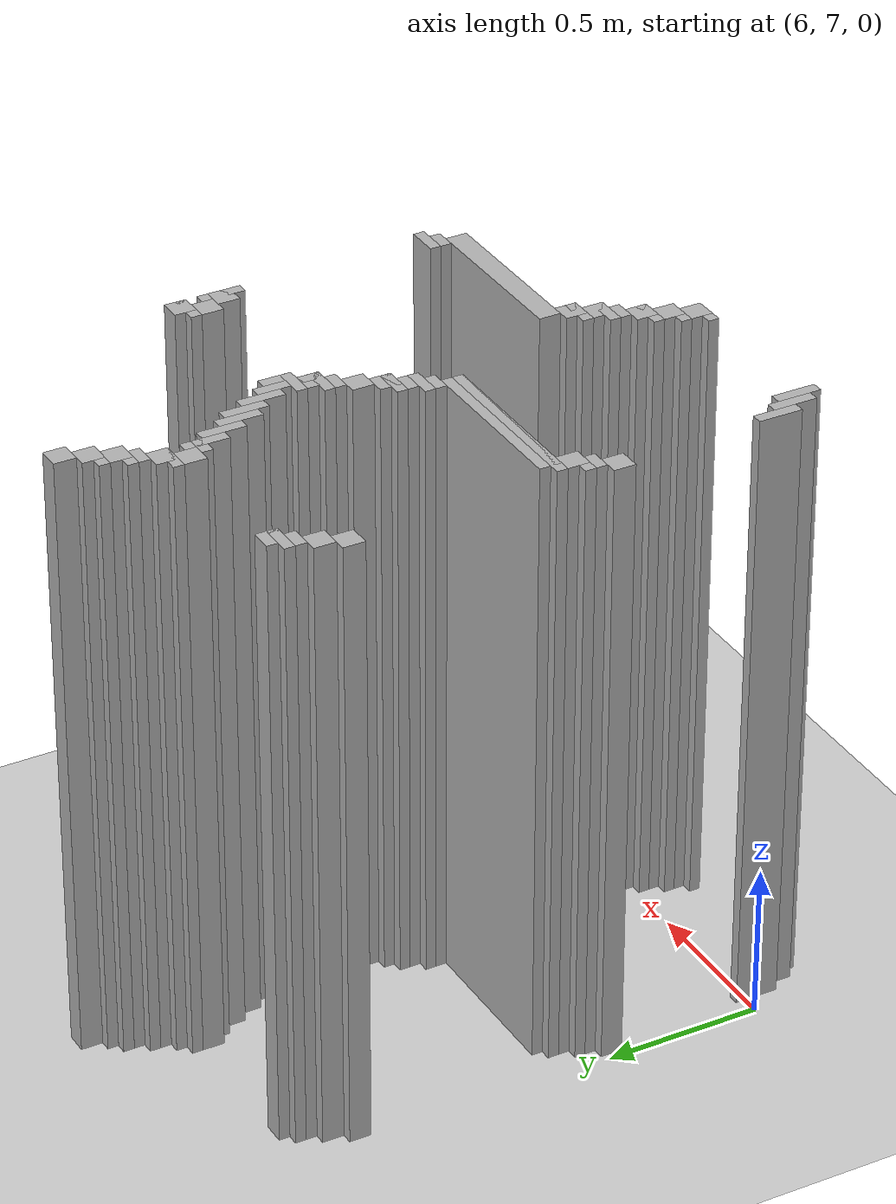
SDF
<sdf version="1.6">
 <world name="slam_world">
  <model name="ground_plane">
   <static>true</static>
   <link name="link">
    <collision name="collision">
     <geometry><plane><normal>0 0 1</normal><size>100 100</size></plane></geometry>
    </collision>
    <visual name="visual">
     <geometry><plane><normal>0 0 1</normal><size>100 100</size></plane></geometry>
     <material>
      <ambient>0.8 0.8 0.8 1</ambient>
      <diffuse>0.8 0.8 0.8 1</diffuse>
      <specular>0.8 0.8 0.8 1</specular>
     </material>
    </visual>
   </link>
  </model>
  <model name="wall_2873">
   <static>true</static>
   <pose>6.821345707656612 8.805104408352667 1.0 0 0 0</pose>
   <link name="link">
    <collision name="collision">
     <geometry><box><size>0.06960556844547564 0.06960556844547564 2.0</size></box></geometry>
    </collision>
    <visual name="visual">
     <geometry><box><size>0.06960556844547564 0.06960556844547564 2.0</size></box></geometry>
     <material><ambient>0.5 0.5 0.5 1</ambient><diffuse>0.7 0.7 0.7 1</diffuse></material>
    </visual>
   </link>
  </model>
  <model name="wall_2886">
   <static>true</static>
   <pose>6.786542923433874 8.735498839907192 1.0 0 0 0</pose>
   <link name="link">
    <collision name="collision">
     <geometry><box><size>0.06960556844547564 0.06960556844547564 2.0</size></box></geometry>
    </collision>
    <visual name="visual">
     <geometry><box><size>0.06960556844547564 0.06960556844547564 2.0</size></box></geometry>
     <material><ambient>0.5 0.5 0.5 1</ambient><diffuse>0.7 0.7 0.7 1</diffuse></material>
    </visual>
   </link>
  </model>
  <model name="wall_2899">
   <static>true</static>
   <pose>6.769141531322505 8.718097447795824 1.0 0 0 0</pose>
   <link name="link">
    <collision name="collision">
     <geometry><box><size>0.10440835266821345 0.03480278422273782 2.0</size></box></geometry>
    </collision>
    <visual name="visual">
     <geometry><box><size>0.10440835266821345 0.03480278422273782 2.0</size></box></geometry>
     <material><ambient>0.5 0.5 0.5 1</ambient><diffuse>0.7 0.7 0.7 1</diffuse></material>
    </visual>
   </link>
  </model>
  <model name="wall_2909">
   <static>true</static>
   <pose>6.751740139211137 8.665893271461716 1.0 0 0 0</pose>
   <link name="link">
    <collision name="collision">
     <geometry><box><size>0.06960556844547564 0.06960556844547564 2.0</size></box></geometry>
    </collision>
    <visual name="visual">
     <geometry><box><size>0.06960556844547564 0.06960556844547564 2.0</size></box></geometry>
     <material><ambient>0.5 0.5 0.5 1</ambient><diffuse>0.7 0.7 0.7 1</diffuse></material>
    </visual>
   </link>
  </model>
  <model name="wall_2921">
   <static>true</static>
   <pose>6.734338747099768 8.648491879350347 1.0 0 0 0</pose>
   <link name="link">
    <collision name="collision">
     <geometry><box><size>0.10440835266821345 0.03480278422273782 2.0</size></box></geometry>
    </collision>
    <visual name="visual">
     <geometry><box><size>0.10440835266821345 0.03480278422273782 2.0</size></box></geometry>
     <material><ambient>0.5 0.5 0.5 1</ambient><diffuse>0.7 0.7 0.7 1</diffuse></material>
    </visual>
   </link>
  </model>
  <model name="wall_2931">
   <static>true</static>
   <pose>6.716937354988398 8.61368909512761 1.0 0 0 0</pose>
   <link name="link">
    <collision name="collision">
     <geometry><box><size>0.06960556844547564 0.03480278422273782 2.0</size></box></geometry>
    </collision>
    <visual name="visual">
     <geometry><box><size>0.06960556844547564 0.03480278422273782 2.0</size></box></geometry>
     <material><ambient>0.5 0.5 0.5 1</ambient><diffuse>0.7 0.7 0.7 1</diffuse></material>
    </visual>
   </link>
  </model>
  <model name="wall_2940">
   <static>true</static>
   <pose>6.682134570765661 8.561484918793504 1.0 0 0 0</pose>
   <link name="link">
    <collision name="collision">
     <geometry><box><size>0.06960556844547564 0.06960556844547564 2.0</size></box></geometry>
    </collision>
    <visual name="visual">
     <geometry><box><size>0.06960556844547564 0.06960556844547564 2.0</size></box></geometry>
     <material><ambient>0.5 0.5 0.5 1</ambient><diffuse>0.7 0.7 0.7 1</diffuse></material>
    </visual>
   </link>
  </model>
  <model name="wall_2953">
   <static>true</static>
   <pose>6.664733178654292 8.544083526682135 1.0 0 0 0</pose>
   <link name="link">
    <collision name="collision">
     <geometry><box><size>0.10440835266821345 0.03480278422273782 2.0</size></box></geometry>
    </collision>
    <visual name="visual">
     <geometry><box><size>0.10440835266821345 0.03480278422273782 2.0</size></box></geometry>
     <material><ambient>0.5 0.5 0.5 1</ambient><diffuse>0.7 0.7 0.7 1</diffuse></material>
    </visual>
   </link>
  </model>
  <model name="wall_2965">
   <static>true</static>
   <pose>6.1600928074245935 8.491879350348027 1.0 0 0 0</pose>
   <link name="link">
    <collision name="collision">
     <geometry><box><size>0.06960556844547564 0.06960556844547564 2.0</size></box></geometry>
    </collision>
    <visual name="visual">
     <geometry><box><size>0.06960556844547564 0.06960556844547564 2.0</size></box></geometry>
     <material><ambient>0.5 0.5 0.5 1</ambient><diffuse>0.7 0.7 0.7 1</diffuse></material>
    </visual>
   </link>
  </model>
  <model name="wall_2966">
   <static>true</static>
   <pose>6.647331786542924 8.491879350348027 1.0 0 0 0</pose>
   <link name="link">
    <collision name="collision">
     <geometry><box><size>0.06960556844547564 0.06960556844547564 2.0</size></box></geometry>
    </collision>
    <visual name="visual">
     <geometry><box><size>0.06960556844547564 0.06960556844547564 2.0</size></box></geometry>
     <material><ambient>0.5 0.5 0.5 1</ambient><diffuse>0.7 0.7 0.7 1</diffuse></material>
    </visual>
   </link>
  </model>
  <model name="wall_2978">
   <static>true</static>
   <pose>6.142691415313225 8.474477958236658 1.0 0 0 0</pose>
   <link name="link">
    <collision name="collision">
     <geometry><box><size>0.10440835266821345 0.03480278422273782 2.0</size></box></geometry>
    </collision>
    <visual name="visual">
     <geometry><box><size>0.10440835266821345 0.03480278422273782 2.0</size></box></geometry>
     <material><ambient>0.5 0.5 0.5 1</ambient><diffuse>0.7 0.7 0.7 1</diffuse></material>
    </visual>
   </link>
  </model>
  <model name="wall_2979">
   <static>true</static>
   <pose>6.69953596287703 8.422273781902552 1.0 0 0 0</pose>
   <link name="link">
    <collision name="collision">
     <geometry><box><size>0.03480278422273782 0.13921113689095127 2.0</size></box></geometry>
    </collision>
    <visual name="visual">
     <geometry><box><size>0.03480278422273782 0.13921113689095127 2.0</size></box></geometry>
     <material><ambient>0.5 0.5 0.5 1</ambient><diffuse>0.7 0.7 0.7 1</diffuse></material>
    </visual>
   </link>
  </model>
  <model name="wall_2992">
   <static>true</static>
   <pose>6.125290023201856 8.43967517401392 1.0 0 0 0</pose>
   <link name="link">
    <collision name="collision">
     <geometry><box><size>0.06960556844547564 0.03480278422273782 2.0</size></box></geometry>
    </collision>
    <visual name="visual">
     <geometry><box><size>0.06960556844547564 0.03480278422273782 2.0</size></box></geometry>
     <material><ambient>0.5 0.5 0.5 1</ambient><diffuse>0.7 0.7 0.7 1</diffuse></material>
    </visual>
   </link>
  </model>
  <model name="wall_2993">
   <static>true</static>
   <pose>6.682134570765661 8.43967517401392 1.0 0 0 0</pose>
   <link name="link">
    <collision name="collision">
     <geometry><box><size>0.06960556844547564 0.03480278422273782 2.0</size></box></geometry>
    </collision>
    <visual name="visual">
     <geometry><box><size>0.06960556844547564 0.03480278422273782 2.0</size></box></geometry>
     <material><ambient>0.5 0.5 0.5 1</ambient><diffuse>0.7 0.7 0.7 1</diffuse></material>
    </visual>
   </link>
  </model>
  <model name="wall_3007">
   <static>true</static>
   <pose>6.090487238979118 8.387470997679815 1.0 0 0 0</pose>
   <link name="link">
    <collision name="collision">
     <geometry><box><size>0.06960556844547564 0.06960556844547564 2.0</size></box></geometry>
    </collision>
    <visual name="visual">
     <geometry><box><size>0.06960556844547564 0.06960556844547564 2.0</size></box></geometry>
     <material><ambient>0.5 0.5 0.5 1</ambient><diffuse>0.7 0.7 0.7 1</diffuse></material>
    </visual>
   </link>
  </model>
  <model name="wall_3008">
   <static>true</static>
   <pose>6.734338747099768 8.352668213457076 1.0 0 0 0</pose>
   <link name="link">
    <collision name="collision">
     <geometry><box><size>0.03480278422273782 0.13921113689095127 2.0</size></box></geometry>
    </collision>
    <visual name="visual">
     <geometry><box><size>0.03480278422273782 0.13921113689095127 2.0</size></box></geometry>
     <material><ambient>0.5 0.5 0.5 1</ambient><diffuse>0.7 0.7 0.7 1</diffuse></material>
    </visual>
   </link>
  </model>
  <model name="wall_3022">
   <static>true</static>
   <pose>6.05568445475638 8.317865429234338 1.0 0 0 0</pose>
   <link name="link">
    <collision name="collision">
     <geometry><box><size>0.06960556844547564 0.06960556844547564 2.0</size></box></geometry>
    </collision>
    <visual name="visual">
     <geometry><box><size>0.06960556844547564 0.06960556844547564 2.0</size></box></geometry>
     <material><ambient>0.5 0.5 0.5 1</ambient><diffuse>0.7 0.7 0.7 1</diffuse></material>
    </visual>
   </link>
  </model>
  <model name="wall_3023">
   <static>true</static>
   <pose>6.769141531322505 8.2830626450116 1.0 0 0 0</pose>
   <link name="link">
    <collision name="collision">
     <geometry><box><size>0.03480278422273782 0.13921113689095127 2.0</size></box></geometry>
    </collision>
    <visual name="visual">
     <geometry><box><size>0.03480278422273782 0.13921113689095127 2.0</size></box></geometry>
     <material><ambient>0.5 0.5 0.5 1</ambient><diffuse>0.7 0.7 0.7 1</diffuse></material>
    </visual>
   </link>
  </model>
  <model name="wall_3038">
   <static>true</static>
   <pose>6.803944315545244 8.248259860788863 1.0 0 0 0</pose>
   <link name="link">
    <collision name="collision">
     <geometry><box><size>0.03480278422273782 0.13921113689095127 2.0</size></box></geometry>
    </collision>
    <visual name="visual">
     <geometry><box><size>0.03480278422273782 0.13921113689095127 2.0</size></box></geometry>
     <material><ambient>0.5 0.5 0.5 1</ambient><diffuse>0.7 0.7 0.7 1</diffuse></material>
    </visual>
   </link>
  </model>
  <model name="wall_3063">
   <static>true</static>
   <pose>6.838747099767981 8.178654292343387 1.0 0 0 0</pose>
   <link name="link">
    <collision name="collision">
     <geometry><box><size>0.03480278422273782 0.13921113689095127 2.0</size></box></geometry>
    </collision>
    <visual name="visual">
     <geometry><box><size>0.03480278422273782 0.13921113689095127 2.0</size></box></geometry>
     <material><ambient>0.5 0.5 0.5 1</ambient><diffuse>0.7 0.7 0.7 1</diffuse></material>
    </visual>
   </link>
  </model>
  <model name="wall_3087">
   <static>true</static>
   <pose>6.8735498839907185 8.074245939675174 1.0 0 0 0</pose>
   <link name="link">
    <collision name="collision">
     <geometry><box><size>0.03480278422273782 0.2088167053364269 2.0</size></box></geometry>
    </collision>
    <visual name="visual">
     <geometry><box><size>0.03480278422273782 0.2088167053364269 2.0</size></box></geometry>
     <material><ambient>0.5 0.5 0.5 1</ambient><diffuse>0.7 0.7 0.7 1</diffuse></material>
    </visual>
   </link>
  </model>
  <model name="wall_3088">
   <static>true</static>
   <pose>7.412993039443156 8.14385150812065 1.0 0 0 0</pose>
   <link name="link">
    <collision name="collision">
     <geometry><box><size>0.06960556844547564 0.06960556844547564 2.0</size></box></geometry>
    </collision>
    <visual name="visual">
     <geometry><box><size>0.06960556844547564 0.06960556844547564 2.0</size></box></geometry>
     <material><ambient>0.5 0.5 0.5 1</ambient><diffuse>0.7 0.7 0.7 1</diffuse></material>
    </visual>
   </link>
  </model>
  <model name="wall_3101">
   <static>true</static>
   <pose>6.908352668213457 8.091647331786543 1.0 0 0 0</pose>
   <link name="link">
    <collision name="collision">
     <geometry><box><size>0.03480278422273782 0.10440835266821345 2.0</size></box></geometry>
    </collision>
    <visual name="visual">
     <geometry><box><size>0.03480278422273782 0.10440835266821345 2.0</size></box></geometry>
     <material><ambient>0.5 0.5 0.5 1</ambient><diffuse>0.7 0.7 0.7 1</diffuse></material>
    </visual>
   </link>
  </model>
  <model name="wall_3102">
   <static>true</static>
   <pose>7.395591647331786 8.12645011600928 1.0 0 0 0</pose>
   <link name="link">
    <collision name="collision">
     <geometry><box><size>0.10440835266821345 0.03480278422273782 2.0</size></box></geometry>
    </collision>
    <visual name="visual">
     <geometry><box><size>0.10440835266821345 0.03480278422273782 2.0</size></box></geometry>
     <material><ambient>0.5 0.5 0.5 1</ambient><diffuse>0.7 0.7 0.7 1</diffuse></material>
    </visual>
   </link>
  </model>
  <model name="wall_3114">
   <static>true</static>
   <pose>7.378190255220417 8.074245939675174 1.0 0 0 0</pose>
   <link name="link">
    <collision name="collision">
     <geometry><box><size>0.06960556844547564 0.06960556844547564 2.0</size></box></geometry>
    </collision>
    <visual name="visual">
     <geometry><box><size>0.06960556844547564 0.06960556844547564 2.0</size></box></geometry>
     <material><ambient>0.5 0.5 0.5 1</ambient><diffuse>0.7 0.7 0.7 1</diffuse></material>
    </visual>
   </link>
  </model>
  <model name="wall_3126">
   <static>true</static>
   <pose>6.8735498839907185 8.056844547563804 1.0 0 0 0</pose>
   <link name="link">
    <collision name="collision">
     <geometry><box><size>0.10440835266821345 0.03480278422273782 2.0</size></box></geometry>
    </collision>
    <visual name="visual">
     <geometry><box><size>0.10440835266821345 0.03480278422273782 2.0</size></box></geometry>
     <material><ambient>0.5 0.5 0.5 1</ambient><diffuse>0.7 0.7 0.7 1</diffuse></material>
    </visual>
   </link>
  </model>
  <model name="wall_3127">
   <static>true</static>
   <pose>7.430394431554524 8.004640371229698 1.0 0 0 0</pose>
   <link name="link">
    <collision name="collision">
     <geometry><box><size>0.03480278422273782 0.13921113689095127 2.0</size></box></geometry>
    </collision>
    <visual name="visual">
     <geometry><box><size>0.03480278422273782 0.13921113689095127 2.0</size></box></geometry>
     <material><ambient>0.5 0.5 0.5 1</ambient><diffuse>0.7 0.7 0.7 1</diffuse></material>
    </visual>
   </link>
  </model>
  <model name="wall_3140">
   <static>true</static>
   <pose>6.85614849187935 8.004640371229698 1.0 0 0 0</pose>
   <link name="link">
    <collision name="collision">
     <geometry><box><size>0.06960556844547564 0.06960556844547564 2.0</size></box></geometry>
    </collision>
    <visual name="visual">
     <geometry><box><size>0.06960556844547564 0.06960556844547564 2.0</size></box></geometry>
     <material><ambient>0.5 0.5 0.5 1</ambient><diffuse>0.7 0.7 0.7 1</diffuse></material>
    </visual>
   </link>
  </model>
  <model name="wall_3141">
   <static>true</static>
   <pose>7.412993039443156 8.004640371229698 1.0 0 0 0</pose>
   <link name="link">
    <collision name="collision">
     <geometry><box><size>0.06960556844547564 0.06960556844547564 2.0</size></box></geometry>
    </collision>
    <visual name="visual">
     <geometry><box><size>0.06960556844547564 0.06960556844547564 2.0</size></box></geometry>
     <material><ambient>0.5 0.5 0.5 1</ambient><diffuse>0.7 0.7 0.7 1</diffuse></material>
    </visual>
   </link>
  </model>
  <model name="wall_3156">
   <static>true</static>
   <pose>6.838747099767981 7.987238979118329 1.0 0 0 0</pose>
   <link name="link">
    <collision name="collision">
     <geometry><box><size>0.10440835266821345 0.03480278422273782 2.0</size></box></geometry>
    </collision>
    <visual name="visual">
     <geometry><box><size>0.10440835266821345 0.03480278422273782 2.0</size></box></geometry>
     <material><ambient>0.5 0.5 0.5 1</ambient><diffuse>0.7 0.7 0.7 1</diffuse></material>
    </visual>
   </link>
  </model>
  <model name="wall_3170">
   <static>true</static>
   <pose>6.821345707656612 7.952436194895592 1.0 0 0 0</pose>
   <link name="link">
    <collision name="collision">
     <geometry><box><size>0.06960556844547564 0.03480278422273782 2.0</size></box></geometry>
    </collision>
    <visual name="visual">
     <geometry><box><size>0.06960556844547564 0.03480278422273782 2.0</size></box></geometry>
     <material><ambient>0.5 0.5 0.5 1</ambient><diffuse>0.7 0.7 0.7 1</diffuse></material>
    </visual>
   </link>
  </model>
  <model name="wall_3183">
   <static>true</static>
   <pose>6.786542923433874 7.900232018561485 1.0 0 0 0</pose>
   <link name="link">
    <collision name="collision">
     <geometry><box><size>0.06960556844547564 0.06960556844547564 2.0</size></box></geometry>
    </collision>
    <visual name="visual">
     <geometry><box><size>0.06960556844547564 0.06960556844547564 2.0</size></box></geometry>
     <material><ambient>0.5 0.5 0.5 1</ambient><diffuse>0.7 0.7 0.7 1</diffuse></material>
    </visual>
   </link>
  </model>
  <model name="wall_3199">
   <static>true</static>
   <pose>6.751740139211137 7.830626450116009 1.0 0 0 0</pose>
   <link name="link">
    <collision name="collision">
     <geometry><box><size>0.06960556844547564 0.06960556844547564 2.0</size></box></geometry>
    </collision>
    <visual name="visual">
     <geometry><box><size>0.06960556844547564 0.06960556844547564 2.0</size></box></geometry>
     <material><ambient>0.5 0.5 0.5 1</ambient><diffuse>0.7 0.7 0.7 1</diffuse></material>
    </visual>
   </link>
  </model>
  <model name="wall_3215">
   <static>true</static>
   <pose>6.734338747099768 7.81322505800464 1.0 0 0 0</pose>
   <link name="link">
    <collision name="collision">
     <geometry><box><size>0.10440835266821345 0.03480278422273782 2.0</size></box></geometry>
    </collision>
    <visual name="visual">
     <geometry><box><size>0.10440835266821345 0.03480278422273782 2.0</size></box></geometry>
     <material><ambient>0.5 0.5 0.5 1</ambient><diffuse>0.7 0.7 0.7 1</diffuse></material>
    </visual>
   </link>
  </model>
  <model name="wall_3229">
   <static>true</static>
   <pose>6.716937354988398 7.761020881670533 1.0 0 0 0</pose>
   <link name="link">
    <collision name="collision">
     <geometry><box><size>0.06960556844547564 0.06960556844547564 2.0</size></box></geometry>
    </collision>
    <visual name="visual">
     <geometry><box><size>0.06960556844547564 0.06960556844547564 2.0</size></box></geometry>
     <material><ambient>0.5 0.5 0.5 1</ambient><diffuse>0.7 0.7 0.7 1</diffuse></material>
    </visual>
   </link>
  </model>
  <model name="wall_3240">
   <static>true</static>
   <pose>6.69953596287703 7.743619489559165 1.0 0 0 0</pose>
   <link name="link">
    <collision name="collision">
     <geometry><box><size>0.10440835266821345 0.03480278422273782 2.0</size></box></geometry>
    </collision>
    <visual name="visual">
     <geometry><box><size>0.10440835266821345 0.03480278422273782 2.0</size></box></geometry>
     <material><ambient>0.5 0.5 0.5 1</ambient><diffuse>0.7 0.7 0.7 1</diffuse></material>
    </visual>
   </link>
  </model>
  <model name="wall_3254">
   <static>true</static>
   <pose>6.682134570765661 7.708816705336426 1.0 0 0 0</pose>
   <link name="link">
    <collision name="collision">
     <geometry><box><size>0.06960556844547564 0.03480278422273782 2.0</size></box></geometry>
    </collision>
    <visual name="visual">
     <geometry><box><size>0.06960556844547564 0.03480278422273782 2.0</size></box></geometry>
     <material><ambient>0.5 0.5 0.5 1</ambient><diffuse>0.7 0.7 0.7 1</diffuse></material>
    </visual>
   </link>
  </model>
  <model name="wall_3266">
   <static>true</static>
   <pose>6.403712296983758 7.65661252900232 1.0 0 0 0</pose>
   <link name="link">
    <collision name="collision">
     <geometry><box><size>0.5568445475638051 0.06960556844547564 2.0</size></box></geometry>
    </collision>
    <visual name="visual">
     <geometry><box><size>0.5568445475638051 0.06960556844547564 2.0</size></box></geometry>
     <material><ambient>0.5 0.5 0.5 1</ambient><diffuse>0.7 0.7 0.7 1</diffuse></material>
    </visual>
   </link>
  </model>
  <model name="wall_3282">
   <static>true</static>
   <pose>6.386310904872389 7.6392111368909505 1.0 0 0 0</pose>
   <link name="link">
    <collision name="collision">
     <geometry><box><size>0.5916473317865429 0.03480278422273782 2.0</size></box></geometry>
    </collision>
    <visual name="visual">
     <geometry><box><size>0.5916473317865429 0.03480278422273782 2.0</size></box></geometry>
     <material><ambient>0.5 0.5 0.5 1</ambient><diffuse>0.7 0.7 0.7 1</diffuse></material>
    </visual>
   </link>
  </model>
  <model name="wall_3297">
   <static>true</static>
   <pose>6.125290023201856 7.587006960556844 1.0 0 0 0</pose>
   <link name="link">
    <collision name="collision">
     <geometry><box><size>0.06960556844547564 0.06960556844547564 2.0</size></box></geometry>
    </collision>
    <visual name="visual">
     <geometry><box><size>0.06960556844547564 0.06960556844547564 2.0</size></box></geometry>
     <material><ambient>0.5 0.5 0.5 1</ambient><diffuse>0.7 0.7 0.7 1</diffuse></material>
    </visual>
   </link>
  </model>
  <model name="wall_3313">
   <static>true</static>
   <pose>6.107888631090487 7.569605568445476 1.0 0 0 0</pose>
   <link name="link">
    <collision name="collision">
     <geometry><box><size>0.10440835266821345 0.03480278422273782 2.0</size></box></geometry>
    </collision>
    <visual name="visual">
     <geometry><box><size>0.10440835266821345 0.03480278422273782 2.0</size></box></geometry>
     <material><ambient>0.5 0.5 0.5 1</ambient><diffuse>0.7 0.7 0.7 1</diffuse></material>
    </visual>
   </link>
  </model>
  <model name="wall_3327">
   <static>true</static>
   <pose>6.090487238979118 7.534802784222737 1.0 0 0 0</pose>
   <link name="link">
    <collision name="collision">
     <geometry><box><size>0.06960556844547564 0.03480278422273782 2.0</size></box></geometry>
    </collision>
    <visual name="visual">
     <geometry><box><size>0.06960556844547564 0.03480278422273782 2.0</size></box></geometry>
     <material><ambient>0.5 0.5 0.5 1</ambient><diffuse>0.7 0.7 0.7 1</diffuse></material>
    </visual>
   </link>
  </model>
  <model name="wall_3340">
   <static>true</static>
   <pose>6.05568445475638 7.48259860788863 1.0 0 0 0</pose>
   <link name="link">
    <collision name="collision">
     <geometry><box><size>0.06960556844547564 0.06960556844547564 2.0</size></box></geometry>
    </collision>
    <visual name="visual">
     <geometry><box><size>0.06960556844547564 0.06960556844547564 2.0</size></box></geometry>
     <material><ambient>0.5 0.5 0.5 1</ambient><diffuse>0.7 0.7 0.7 1</diffuse></material>
    </visual>
   </link>
  </model>
  <model name="wall_3398">
   <static>true</static>
   <pose>7.430394431554524 7.32598607888631 1.0 0 0 0</pose>
   <link name="link">
    <collision name="collision">
     <geometry><box><size>0.10440835266821345 0.03480278422273782 2.0</size></box></geometry>
    </collision>
    <visual name="visual">
     <geometry><box><size>0.10440835266821345 0.03480278422273782 2.0</size></box></geometry>
     <material><ambient>0.5 0.5 0.5 1</ambient><diffuse>0.7 0.7 0.7 1</diffuse></material>
    </visual>
   </link>
  </model>
  <model name="wall_3411">
   <static>true</static>
   <pose>7.412993039443156 7.291183294663573 1.0 0 0 0</pose>
   <link name="link">
    <collision name="collision">
     <geometry><box><size>0.06960556844547564 0.03480278422273782 2.0</size></box></geometry>
    </collision>
    <visual name="visual">
     <geometry><box><size>0.06960556844547564 0.03480278422273782 2.0</size></box></geometry>
     <material><ambient>0.5 0.5 0.5 1</ambient><diffuse>0.7 0.7 0.7 1</diffuse></material>
    </visual>
   </link>
  </model>
  <model name="wall_3420">
   <static>true</static>
   <pose>7.134570765661253 7.238979118329466 1.0 0 0 0</pose>
   <link name="link">
    <collision name="collision">
     <geometry><box><size>0.5568445475638051 0.06960556844547564 2.0</size></box></geometry>
    </collision>
    <visual name="visual">
     <geometry><box><size>0.5568445475638051 0.06960556844547564 2.0</size></box></geometry>
     <material><ambient>0.5 0.5 0.5 1</ambient><diffuse>0.7 0.7 0.7 1</diffuse></material>
    </visual>
   </link>
  </model>
  <model name="wall_3434">
   <static>true</static>
   <pose>6.85614849187935 7.16937354988399 1.0 0 0 0</pose>
   <link name="link">
    <collision name="collision">
     <geometry><box><size>0.06960556844547564 0.06960556844547564 2.0</size></box></geometry>
    </collision>
    <visual name="visual">
     <geometry><box><size>0.06960556844547564 0.06960556844547564 2.0</size></box></geometry>
     <material><ambient>0.5 0.5 0.5 1</ambient><diffuse>0.7 0.7 0.7 1</diffuse></material>
    </visual>
   </link>
  </model>
  <model name="wall_3446">
   <static>true</static>
   <pose>6.838747099767981 7.151972157772621 1.0 0 0 0</pose>
   <link name="link">
    <collision name="collision">
     <geometry><box><size>0.10440835266821345 0.03480278422273782 2.0</size></box></geometry>
    </collision>
    <visual name="visual">
     <geometry><box><size>0.10440835266821345 0.03480278422273782 2.0</size></box></geometry>
     <material><ambient>0.5 0.5 0.5 1</ambient><diffuse>0.7 0.7 0.7 1</diffuse></material>
    </visual>
   </link>
  </model>
  <model name="wall_3458">
   <static>true</static>
   <pose>6.821345707656612 7.099767981438514 1.0 0 0 0</pose>
   <link name="link">
    <collision name="collision">
     <geometry><box><size>0.06960556844547564 0.06960556844547564 2.0</size></box></geometry>
    </collision>
    <visual name="visual">
     <geometry><box><size>0.06960556844547564 0.06960556844547564 2.0</size></box></geometry>
     <material><ambient>0.5 0.5 0.5 1</ambient><diffuse>0.7 0.7 0.7 1</diffuse></material>
    </visual>
   </link>
  </model>
  <model name="wall_3470">
   <static>true</static>
   <pose>6.803944315545244 7.082366589327146 1.0 0 0 0</pose>
   <link name="link">
    <collision name="collision">
     <geometry><box><size>0.10440835266821345 0.03480278422273782 2.0</size></box></geometry>
    </collision>
    <visual name="visual">
     <geometry><box><size>0.10440835266821345 0.03480278422273782 2.0</size></box></geometry>
     <material><ambient>0.5 0.5 0.5 1</ambient><diffuse>0.7 0.7 0.7 1</diffuse></material>
    </visual>
   </link>
  </model>
  <model name="wall_3479">
   <static>true</static>
   <pose>6.786542923433874 7.047563805104408 1.0 0 0 0</pose>
   <link name="link">
    <collision name="collision">
     <geometry><box><size>0.06960556844547564 0.03480278422273782 2.0</size></box></geometry>
    </collision>
    <visual name="visual">
     <geometry><box><size>0.06960556844547564 0.03480278422273782 2.0</size></box></geometry>
     <material><ambient>0.5 0.5 0.5 1</ambient><diffuse>0.7 0.7 0.7 1</diffuse></material>
    </visual>
   </link>
  </model>
  <model name="wall_3488">
   <static>true</static>
   <pose>6.073085846867749 6.960556844547564 1.0 0 0 0</pose>
   <link name="link">
    <collision name="collision">
     <geometry><box><size>0.03480278422273782 0.13921113689095127 2.0</size></box></geometry>
    </collision>
    <visual name="visual">
     <geometry><box><size>0.03480278422273782 0.13921113689095127 2.0</size></box></geometry>
     <material><ambient>0.5 0.5 0.5 1</ambient><diffuse>0.7 0.7 0.7 1</diffuse></material>
    </visual>
   </link>
  </model>
  <model name="wall_3489">
   <static>true</static>
   <pose>6.751740139211137 6.995359628770301 1.0 0 0 0</pose>
   <link name="link">
    <collision name="collision">
     <geometry><box><size>0.06960556844547564 0.06960556844547564 2.0</size></box></geometry>
    </collision>
    <visual name="visual">
     <geometry><box><size>0.06960556844547564 0.06960556844547564 2.0</size></box></geometry>
     <material><ambient>0.5 0.5 0.5 1</ambient><diffuse>0.7 0.7 0.7 1</diffuse></material>
    </visual>
   </link>
  </model>
  <model name="wall_3498">
   <static>true</static>
   <pose>6.734338747099768 6.977958236658933 1.0 0 0 0</pose>
   <link name="link">
    <collision name="collision">
     <geometry><box><size>0.10440835266821345 0.03480278422273782 2.0</size></box></geometry>
    </collision>
    <visual name="visual">
     <geometry><box><size>0.10440835266821345 0.03480278422273782 2.0</size></box></geometry>
     <material><ambient>0.5 0.5 0.5 1</ambient><diffuse>0.7 0.7 0.7 1</diffuse></material>
    </visual>
   </link>
  </model>
  <model name="wall_3507">
   <static>true</static>
   <pose>6.107888631090487 6.890951276102088 1.0 0 0 0</pose>
   <link name="link">
    <collision name="collision">
     <geometry><box><size>0.03480278422273782 0.13921113689095127 2.0</size></box></geometry>
    </collision>
    <visual name="visual">
     <geometry><box><size>0.03480278422273782 0.13921113689095127 2.0</size></box></geometry>
     <material><ambient>0.5 0.5 0.5 1</ambient><diffuse>0.7 0.7 0.7 1</diffuse></material>
    </visual>
   </link>
  </model>
  <model name="wall_3508">
   <static>true</static>
   <pose>6.716937354988398 6.9257540603248255 1.0 0 0 0</pose>
   <link name="link">
    <collision name="collision">
     <geometry><box><size>0.06960556844547564 0.06960556844547564 2.0</size></box></geometry>
    </collision>
    <visual name="visual">
     <geometry><box><size>0.06960556844547564 0.06960556844547564 2.0</size></box></geometry>
     <material><ambient>0.5 0.5 0.5 1</ambient><diffuse>0.7 0.7 0.7 1</diffuse></material>
    </visual>
   </link>
  </model>
  <model name="wall_3519">
   <static>true</static>
   <pose>6.142691415313225 6.85614849187935 1.0 0 0 0</pose>
   <link name="link">
    <collision name="collision">
     <geometry><box><size>0.03480278422273782 0.13921113689095127 2.0</size></box></geometry>
    </collision>
    <visual name="visual">
     <geometry><box><size>0.03480278422273782 0.13921113689095127 2.0</size></box></geometry>
     <material><ambient>0.5 0.5 0.5 1</ambient><diffuse>0.7 0.7 0.7 1</diffuse></material>
    </visual>
   </link>
  </model>
  <model name="wall_3520">
   <static>true</static>
   <pose>6.69953596287703 6.908352668213457 1.0 0 0 0</pose>
   <link name="link">
    <collision name="collision">
     <geometry><box><size>0.10440835266821345 0.03480278422273782 2.0</size></box></geometry>
    </collision>
    <visual name="visual">
     <geometry><box><size>0.10440835266821345 0.03480278422273782 2.0</size></box></geometry>
     <material><ambient>0.5 0.5 0.5 1</ambient><diffuse>0.7 0.7 0.7 1</diffuse></material>
    </visual>
   </link>
  </model>
  <model name="wall_3529">
   <static>true</static>
   <pose>6.682134570765661 6.85614849187935 1.0 0 0 0</pose>
   <link name="link">
    <collision name="collision">
     <geometry><box><size>0.06960556844547564 0.06960556844547564 2.0</size></box></geometry>
    </collision>
    <visual name="visual">
     <geometry><box><size>0.06960556844547564 0.06960556844547564 2.0</size></box></geometry>
     <material><ambient>0.5 0.5 0.5 1</ambient><diffuse>0.7 0.7 0.7 1</diffuse></material>
    </visual>
   </link>
  </model>
  <model name="wall_3538">
   <static>true</static>
   <pose>6.664733178654292 6.838747099767981 1.0 0 0 0</pose>
   <link name="link">
    <collision name="collision">
     <geometry><box><size>0.10440835266821345 0.03480278422273782 2.0</size></box></geometry>
    </collision>
    <visual name="visual">
     <geometry><box><size>0.10440835266821345 0.03480278422273782 2.0</size></box></geometry>
     <material><ambient>0.5 0.5 0.5 1</ambient><diffuse>0.7 0.7 0.7 1</diffuse></material>
    </visual>
   </link>
  </model>
 </world>
</sdf>
